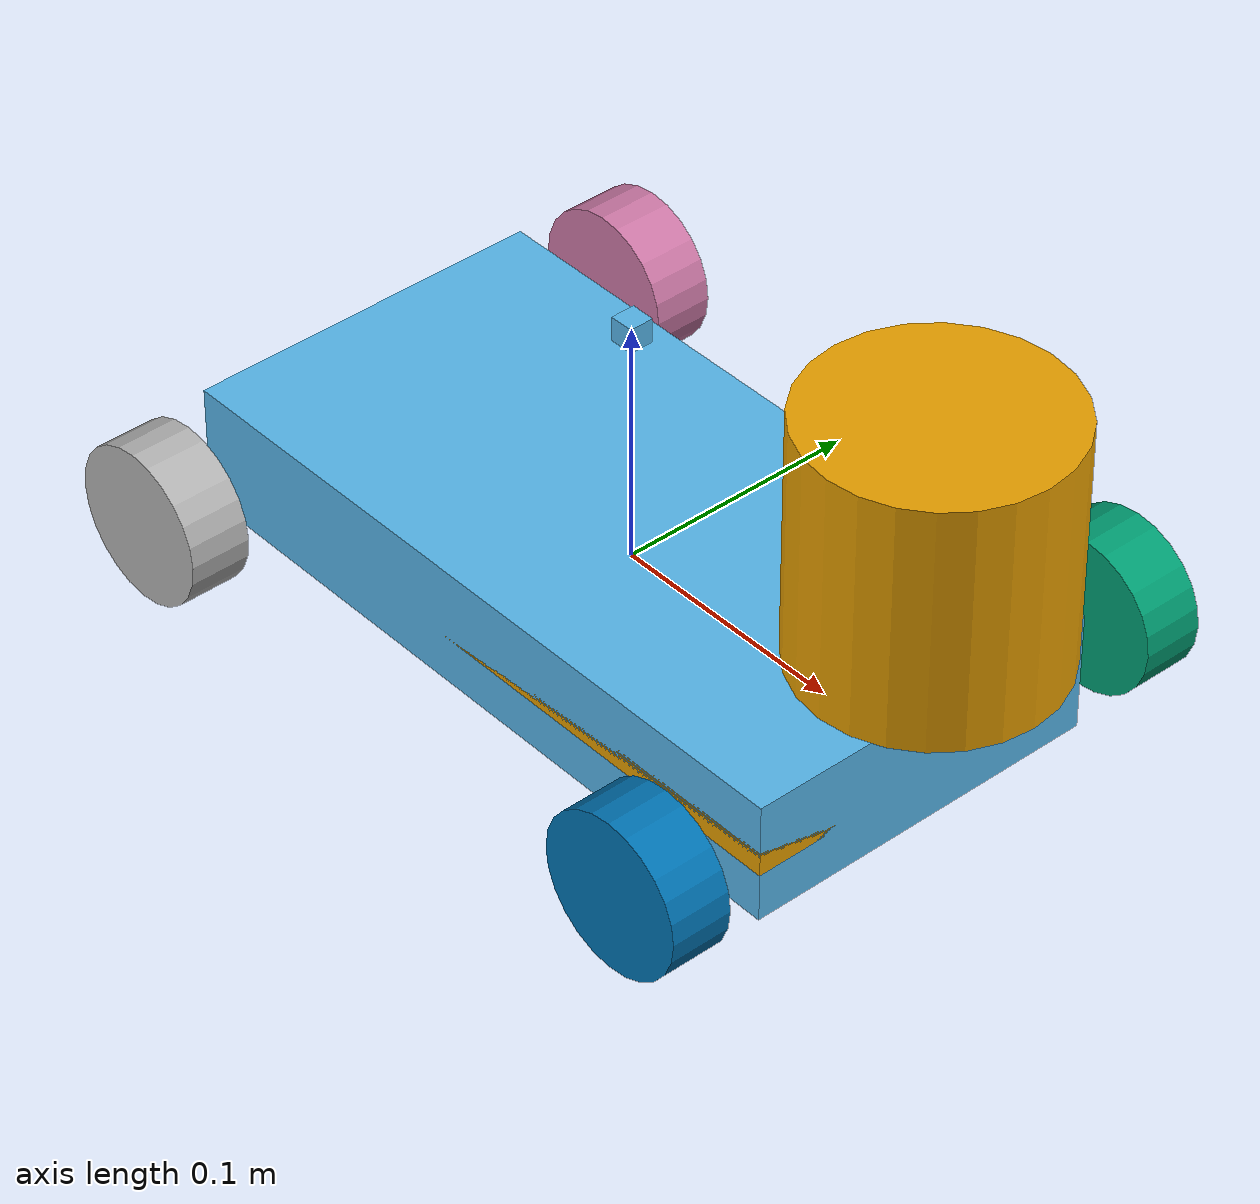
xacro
<?xml version="1.0"?>
<robot xmlns:xacro="http://www.ros.org/wiki/xacro" name="smart_robot_car">

  <!-- Define robot constants -->
  <xacro:property name="base_width" value="0.3"/>
  <xacro:property name="base_length" value="0.15"/>
  <xacro:property name="base_height" value="0.01"/>

  <xacro:property name="wheel_radius" value="0.10"/>
  <xacro:property name="wheel_width" value="0.04"/>
  <xacro:property name="wheel_ygap" value="0.025"/>
  <xacro:property name="wheel_zoff" value="0.05"/>
  <xacro:property name="wheel_xoff" value="0.12"/>

  <xacro:property name="caster_xoff" value="0.14"/>

  <!-- Base link -->
  <link name="base_link">
    <visual>
      <geometry>
        <box size="0.3 0.15 0.01"/> <!-- Base dimensions based on wheelbase width -->
      </geometry>
    </visual>
    <inertial>
      <mass value="1.0"/>
      <origin xyz="0 0 1"/>
      <inertia ixx="0.01" ixy="0.0" ixz="0.0" iyy="0.01" iyz="0.0" izz="0.01"/>
    </inertial>
  </link>

  <!-- Chassis of the robot -->
  <link name="chassis_link">
    <visual>
      <geometry>
        <box size="0.3 0.15 0.05"/> <!-- Dimensions of the chassis -->
      </geometry>
    </visual>
    <inertial>
      <mass value="5.0"/>
      <origin xyz="0 0 0"/>
      <inertia ixx="0.1" ixy="0.0" ixz="0.0" iyy="0.1" iyz="0.0" izz="0.1"/>
    </inertial>
    <parent link="base_link" />
    <material name="Red"/>
  </link>

 <!-- Fixed joint to connect base_link to chassis_link -->
  <joint name="base_to_chassis" type="fixed">
    <parent link="base_link"/>
    <child link="chassis_link"/>
    <origin xyz="0 0 0" rpy="0 0 0"/>
  </joint>

  <!-- Rear Wheel Macro -->
  <xacro:macro name="rear_wheel" params="name xyz rpy">
    <link name="${name}_link">
      <visual>
        <origin xyz="0 0 0"/>
        <geometry>
          <cylinder length="0.025" radius="0.032"/> <!-- Wheel diameter: 0.064 / 2 -->
        </geometry>
      </visual>
      <collision>
        <origin xyz="0 0 0"/>
        <geometry>
          <cylinder length="0.025" radius="0.032"/>
        </geometry>
      </collision>
      <inertial>
        <mass value="0.2"/>
        <origin xyz="0 0 0"/>
        <inertia ixx="0.01" ixy="0.0" ixz="0.0" iyy="0.01" iyz="0.0" izz="0.01"/>
      </inertial>
      <material name="Black"/>
    </link>
    <joint name="${name}_joint" type="continuous">
      <parent link="base_link"/>
      <child link="${name}_link"/>
      <origin xyz="${xyz}" rpy="${rpy}"/>
      <axis xyz="0 0 1"/>
      <limit effort="10.0" velocity="10.0"/>
    </joint>
  </xacro:macro>

    <!-- Front Wheel Macro -->
  <xacro:macro name="front_wheel" params="name xyz rpy">
    <link name="${name}_link">
      <visual>
        <origin xyz="0 0 0"/>
        <geometry>
          <cylinder length="0.025" radius="0.032"/> <!-- Wheel diameter: 0.064 / 2 -->
        </geometry>
      </visual>
      <collision>
        <origin xyz="0 0 0"/>
        <geometry>
          <cylinder length="0.025" radius="0.032"/>
        </geometry>
      </collision>
      <inertial>
        <mass value="0.2"/>
        <origin xyz="0 0 0"/>
        <inertia ixx="0.01" ixy="0.0" ixz="0.0" iyy="0.01" iyz="0.0" izz="0.01"/>
      </inertial>
      <material name="Black"/>
    </link>
    <joint name="${name}_joint" type="continuous">
      <parent link="${name}_intermediary_link"/>
      <child link="${name}_link"/>
      <origin xyz="0 0 0" rpy="0 0 0"/>
      <axis xyz="0 0 1"/>
    </joint>
    <link name="${name}_intermediary_link"><origin xyz="0 0 0"/>
      <inertial>
        <mass value="0.2"/>
        <origin xyz="0 0 0"/>
        <inertia ixx="0.01" ixy="0.0" ixz="0.0" iyy="0.01" iyz="0.0" izz="0.01"/>
      </inertial>
    </link>
    <joint name="${name}_steer_joint" type="revolute">
      <parent link="base_link"/>
      <child link="${name}_intermediary_link"/>
      <origin xyz="${xyz}" rpy="${rpy}"/>
      <axis xyz="0 1 0"/> <!-- Steering axis for front wheel -->
      <limit lower="-${45*(pi/180)}" upper="${45*(pi/180)}" effort="10" velocity="1"/>
    </joint>
  </xacro:macro>

  <!-- Defining the wheel joints based on the specification -->
  <!-- Front Left Wheel (Steering) -->
  <xacro:front_wheel name="front_left_wheel" xyz="0.1285 0.11 0" rpy="1.57 0 0"/>

  <!-- Front Right Wheel (Steering) -->
  <xacro:front_wheel name="front_right_wheel" xyz="0.1285 -0.11 0" rpy="1.57 0 0"/>

  <!-- Back Left Wheel (Driving) -->
  <xacro:rear_wheel name="back_left_wheel" xyz="-0.1285 0.11 0" rpy="1.57 0 0"/>

  <!-- Back Right Wheel (Driving) -->
  <xacro:rear_wheel name="back_right_wheel" xyz="-0.1285 -0.11 0" rpy="1.57 0 0"/>

  <!-- LiDAR sensor -->
  <link name="lidar_link">
    <visual>
      <geometry>
        <cylinder length="0.1" radius="0.05"/>
      </geometry>
    </visual>
    <inertial>
      <mass value="0.2"/>
      <origin xyz="0 0 0"/>
      <inertia ixx="0.01" ixy="0.0" ixz="0.0" iyy="0.01" iyz="0.0" izz="0.01"/>
    </inertial>
    <material name="Blue"/>
  </link>

  <joint name="lidar_joint" type="fixed">
    <parent link="chassis_link"/>
    <child link="lidar_link"/>
    <origin xyz="0.15 0 0.1" rpy="0 0 0"/> <!-- Position of the LiDAR on top of the car -->
  </joint>

  <xacro:property name="imu_size" value="0.01"/>

  <link name="imu_link">
        <visual>
            <origin xyz="0 0 0" rpy="0 0 0"/>
            <geometry>
                <box size="${imu_size} ${imu_size} ${imu_size}"/>
            </geometry>
            <material name="imu_material"/>
        </visual>

        <inertial>
            <mass value="0.1"/>
            <origin xyz="0 0 0" rpy="0 0 0"/>
            <inertia ixx="0.1" ixy="0.0" ixz="0.0" iyy="0.1" iyz="0.0" izz="0.1"/>
        </inertial>
    </link>

  <!-- Gazebo IMU sensor plugin -->
  <gazebo reference="imu_link">
    <sensor name="my_imu" type="imu">
            <always_on>true</always_on>
            <update_rate>100</update_rate>
            <plugin name="my_imu_plugin" filename="libgazebo_ros_imu_sensor.so">
                <ros>
                    <remapping>~/out:=imu_dataa</remapping>
                </ros>
            </plugin>
        </sensor>
  </gazebo>

  <joint name="base_to_imu" type="fixed">
      <origin xyz="0 0 ${wheel_radius}" rpy="0 0 0"/>
      <parent link="base_link"/>
      <child link="imu_link"/>
  </joint>

  <!-- Adding the Car Gazebo Plugin -->
  <gazebo>
    <plugin name="car_plugin" filename="libcar_gazebo_plugin.so">
    </plugin>
  </gazebo>

</robot>
